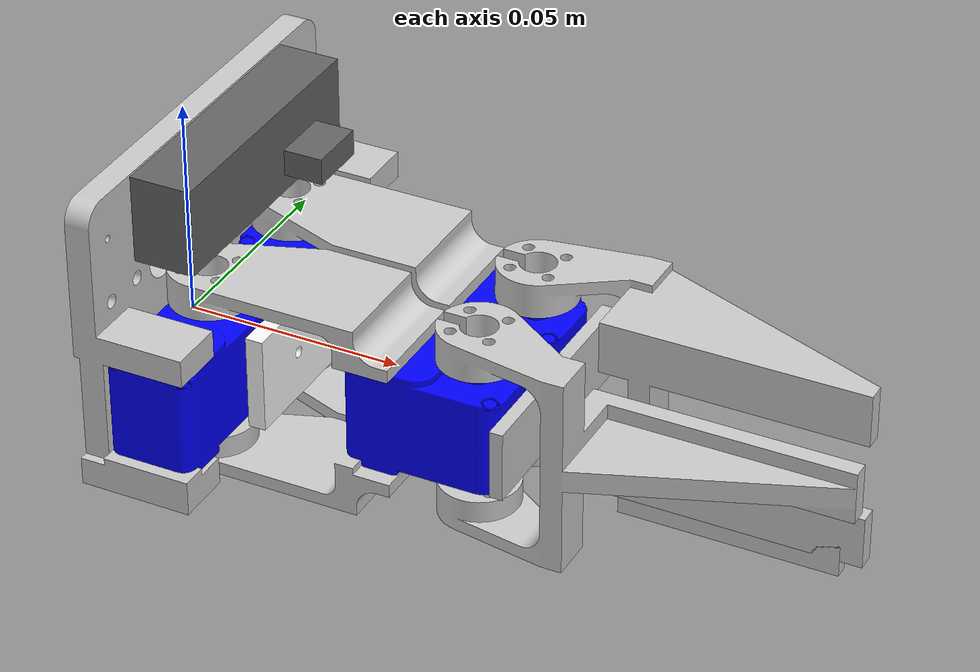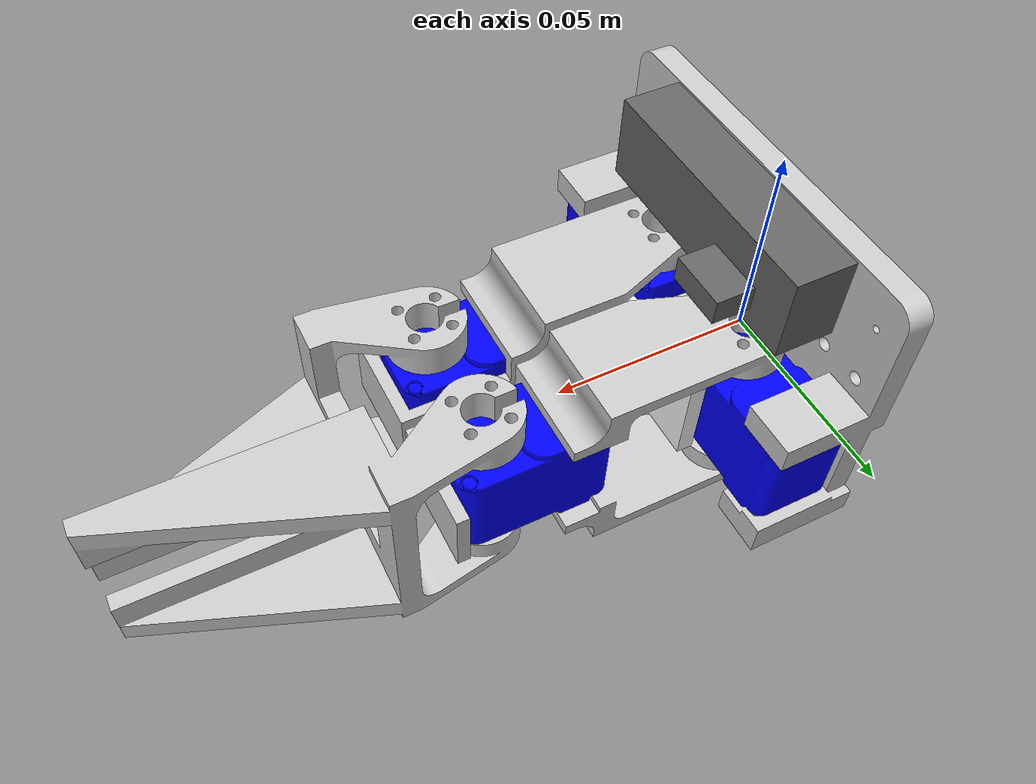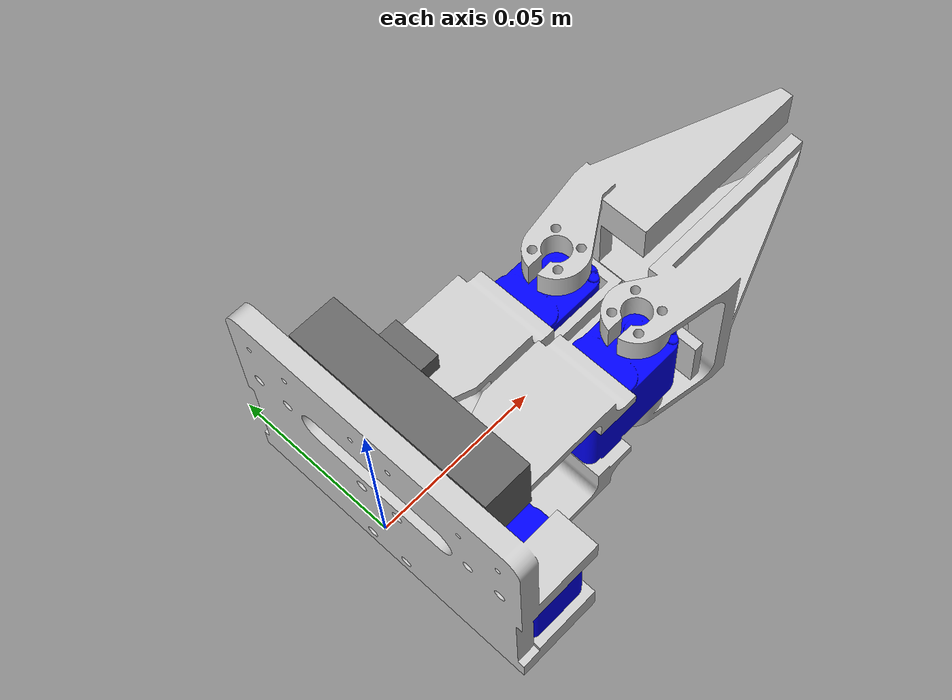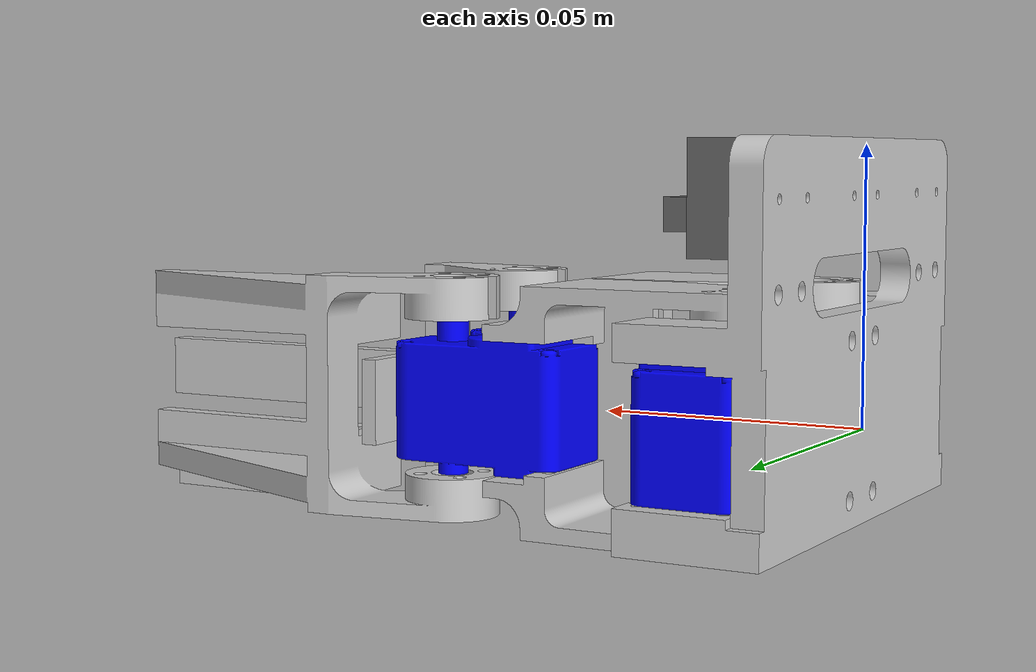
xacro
<?xml version="1.0"?>
<robot name="fcs4hand2310" xmlns:xacro="http://www.ros.org/wiki/xacro">

  <xacro:include filename="$(find fcs4hand2310)/urdf/fcs4hand2310.urdf"/>

  <ros2_control name="fcs0" type="system">
    <hardware>
      <plugin>hardware_fcs/HardwareFCS</plugin>
      <param name="device">/dev/ttyUSB0</param>
      <param name="num">4</param>
    </hardware>

    <joint name="hndj00">
      <command_interface name="position"/>
      <state_interface name="position"/>
    </joint>

    <joint name="hndj01">
      <command_interface name="position"/>
      <state_interface name="position"/>
    </joint>

    <joint name="hndj10">
      <command_interface name="position"/>
      <state_interface name="position"/>
    </joint>

    <joint name="hndj11">
      <command_interface name="position"/>
      <state_interface name="position"/>
    </joint>

  </ros2_control>

</robot>

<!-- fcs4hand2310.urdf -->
<robot name="fcs2310">
  <link name="base">
    <visual name="base plate">
      <origin xyz="0 0 0.0022" rpy="-1.57079632675 0 -1.57079632675"/>
      <geometry>
	<mesh filename="package://fcs4hand2310/urdf/FCS4HAND2310_BASE.dae"/>
      </geometry>
      <material name="gray80">
	<color rgba="0.8 0.8 0.8 1.0"/>
      </material>
    </visual>
    <visual name="R30xxx (J00)">
      <origin xyz="0.060 -0.0358 0.035" rpy="0 0 1.57079632675"/>
      <geometry>
	<mesh filename="package://fcs4hand2310/urdf/RS30x_BottomShaft.dae"/>
      </geometry>
      <material name="blue">
	<color rgba="0.0 0.0 1.0 1.0"/>
      </material>
    </visual>
    <visual name="R30xxx (J10)">
      <origin xyz="-0.030 0.0356 0.035" rpy="0 0 -1.57079632675"/>
      <geometry>
	<mesh filename="package://fcs4hand2310/urdf/RS30x_BottomShaft.dae"/>
      </geometry>
      <material name="blue"/>
    </visual>
    <visual name="base LID">
      <origin xyz="0.025 0 0" rpy="1.57079632675 0 1.57079632675"/>
      <geometry>
	<mesh filename="package://fcs4hand2310/urdf/FCS4HAND2310_BASE_LID.dae"/>
      </geometry>
    </visual>
  </link>
  <link name="FG00">
    <visual name="FG00">
      <origin xyz="0.0 0.033 0.025" rpy="3.141592653589793 0 1.57079632679489661923"/>
      <geometry>
	<mesh filename="package://fcs4hand2310/urdf/FCS4HAND2310_FINGER_ROOT_RH.dae"/>
      </geometry>
      <material name="gray80">
	<color rgba="0.8 0.8 0.8 1.0"/>
      </material>
    </visual>
    <visual name="RS3xxx (J01)">
      <origin xyz="0.0425 -0.041 0.035" rpy="0 0 0"/>
      <geometry>
	<mesh filename="package://fcs4hand2310/urdf/RS30x_BottomShaft.dae"/>
      </geometry>
      <material name="blue"/>
    </visual>
  </link>
  <link name="FG01">
    <visual name="FG01">
      <origin xyz="0.0 0.0 -0.020" rpy="0 0 -1.57079632679489661923"/>
      <geometry>
	<mesh filename="package://fcs4hand2310/urdf/FCS4HAND2310_FINGER_EDGE_RH.dae"/>
      </geometry>
      <material name="gray80"/>
    </visual>
  </link>
  <link name="FG10">
    <visual name="FG10">
      <origin xyz="0.0 0.0 0.025" rpy="3.141592653589793 0 1.57079632679489661923"/>
      <geometry>
	<mesh filename="package://fcs4hand2310/urdf/FCS4HAND2310_FINGER_ROOT_LH.dae"/>
      </geometry>
      <material name="gray80"/>
    </visual>
    <visual name="RS3xxx (J11)">
      <origin xyz="0.0425 -0.049 0.035" rpy="0 0 0"/>
      <geometry>
	<mesh filename="package://fcs4hand2310/urdf/RS30x_BottomShaft.dae"/>
      </geometry>
      <material name="blue"/>
    </visual>
  </link>
  <link name="FG11">
    <visual>
      <origin xyz="0.0 0.005 -0.020" rpy="0 0 -1.57079632679489661923"/>
      <geometry>
	<mesh filename="package://fcs4hand2310/urdf/FCS4HAND2310_FINGER_EDGE_LH.dae"/>
      </geometry>
      <material name="gray80"/>
    </visual>
    <visual>
      <origin xyz="0.05 -0.011 -0.016"/>
      <geometry>
	<box size="0.05 0.003 0.012"/>
      </geometry>
      <material name="gray80"/>
    </visual>
  </link>
  <link name="hub71">
    <visual name="TB-RV71EH (body)">
      <origin xyz="0 0 0" rpy="0 0 0"/>
      <geometry>
	<box size="0.020 0.062 0.014"/>
      </geometry>
      <material name="gray40">
	<color rgba="0.4 0.4 0.4 1.0"/>
      </material>
    </visual>
    <visual name="TB-RV71EH (switch)">
      <origin xyz="0.003 0.014  0.006" rpy="0 0 0"/>
      <geometry>
	<box size="0.006 0.014 0.020"/>
      </geometry>
      <material name="gray40"/>
    </visual>
  </link>
  <joint name="hndj00" type="revolute">
    <origin xyz="0.0155 -0.0175 0.0"/>
    <axis xyz="0 0 1"/>
    <parent link="base"/>
    <child link="FG00"/>
    <limit effort="30" velocity="1.0" lower="-1.57079632679489661923" upper="0"/>
  </joint>
  <joint name="hndj01" type="revolute">
    <origin xyz="0.061 0.004 0.0"/>
    <axis xyz="0 0 1"/>
    <parent link="FG00"/>
    <child link="FG01"/>
    <limit effort="30" velocity="1.0" lower="-2.61799387799149436538" upper="2.61799387799149436538"/>
  </joint>
  <joint name="hndj10" type="revolute">
    <origin xyz="0.0155 0.0175 0.0"/>
    <axis xyz="0 0 1"/>
    <parent link="base"/>
    <child link="FG10"/>
    <limit effort="30" velocity="1.0" lower="0" upper="1.57079632679489661923"/>
  </joint>
  <joint name="hndj11" type="revolute">
    <origin xyz="0.061 -0.004 0.0"/>
    <axis xyz="0 0 1"/>
    <parent link="FG10"/>
    <child link="FG11"/>
    <limit effort="30" velocity="1.0" lower="-2.61799387799149436538" upper="2.61799387799149436538"/>
  </joint>
  <joint name="hub" type="fixed">
    <origin xyz="0.013 0 0.041" rpy="0 1.57079632679489661923 0"/>
    <parent link="base"/>
    <child link="hub71"/>
  </joint>

</robot>
